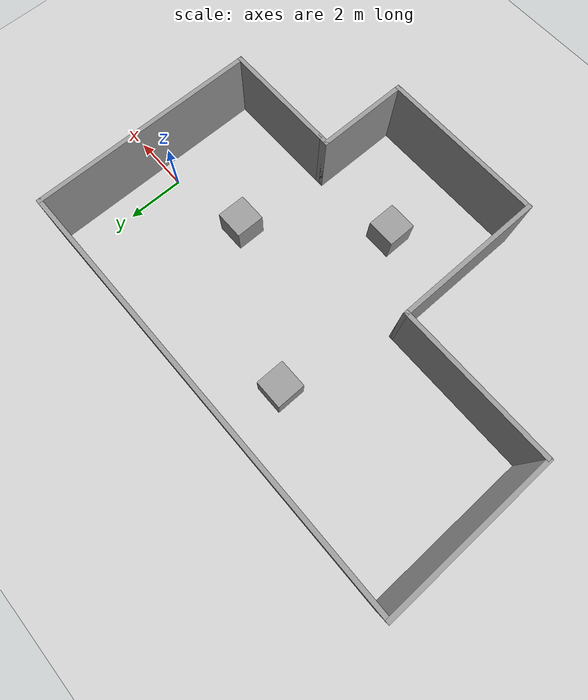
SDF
<sdf version="1.7">
 <world name="default">
  <light name="sun" type="directional">
   <pose>0 0 10 0 -0 0</pose>
   <diffuse>0.8 0.8 0.8 1</diffuse>
   <specular>0.2 0.2 0.2 1</specular>
   <attenuation>
    <range>1000</range>
    <constant>0.9</constant>
    <linear>0.01</linear>
    <quadratic>0.001</quadratic>
   </attenuation>
   <direction>-0.5 0.1 -0.9</direction>
   <spot><inner_angle>0</inner_angle><outer_angle>0</outer_angle><falloff>0</falloff></spot>
  </light>
  <model name="ground_plane">
   <static>1</static>
   <link name="link">
    <collision name="collision">
     <geometry><plane><normal>0 0 1</normal><size>100 100</size></plane></geometry>
     <surface>
      <contact><collide_bitmask>65535</collide_bitmask></contact>
      <friction><ode><mu>100</mu><mu2>50</mu2></ode></friction>
     </surface>
    </collision>
    <visual name="visual">
     <cast_shadows>0</cast_shadows>
     <geometry><plane><normal>0 0 1</normal><size>100 100</size></plane></geometry>
     <material>
      <script><uri>file://media/materials/scripts/gazebo.material</uri><name>Gazebo/Grey</name></script>
     </material>
    </visual>
   </link>
  </model>
  <gravity>0 0 -9.8</gravity>
  <magnetic_field>6e-06 2.3e-05 -4.2e-05</magnetic_field>
  <atmosphere type="adiabatic"/>
  <physics type="ode">
   <max_step_size>0.001</max_step_size>
   <real_time_factor>1</real_time_factor>
   <real_time_update_rate>1000</real_time_update_rate>
  </physics>
  <scene><ambient>0.4 0.4 0.4 1</ambient><background>0.7 0.7 0.7 1</background><shadows>1</shadows></scene>
  <audio><device>default</device></audio>
  <spherical_coordinates>
   <surface_model>EARTH_WGS84</surface_model>
   <latitude_deg>0</latitude_deg>
   <longitude_deg>0</longitude_deg>
   <elevation>0</elevation>
   <heading_deg>0</heading_deg>
  </spherical_coordinates>
  <model name="SmallRoom">
   <pose>-6.6757 -1.38114 0 0 -0 0</pose>
   <link name="Wall_0">
    <collision name="Wall_0_Collision">
     <geometry><box><size>4 0.15 2.5</size></box></geometry>
     <pose>0 0 1.25 0 -0 0</pose>
    </collision>
    <visual name="Wall_0_Visual">
     <pose>0 0 1.25 0 -0 0</pose>
     <geometry><box><size>4 0.15 2.5</size></box></geometry>
     <material>
      <script><uri>file://media/materials/scripts/gazebo.material</uri><name>Gazebo/Grey</name></script>
      <ambient>1 1 1 1</ambient>
     </material>
     <meta><layer>0</layer></meta>
    </visual>
    <pose>5.625 -2.375 0 0 -0 0</pose>
   </link>
   <link name="Wall_1">
    <collision name="Wall_1_Collision">
     <geometry><box><size>8 0.15 2.5</size></box></geometry>
     <pose>0 0 1.25 0 -0 0</pose>
    </collision>
    <visual name="Wall_1_Visual">
     <pose>0 0 1.25 0 -0 0</pose>
     <geometry><box><size>8 0.15 2.5</size></box></geometry>
     <material>
      <script><uri>file://media/materials/scripts/gazebo.material</uri><name>Gazebo/Grey</name></script>
      <ambient>1 1 1 1</ambient>
     </material>
     <meta><layer>0</layer></meta>
    </visual>
    <pose>7.55 1.55 0 0 -0 1.5708</pose>
   </link>
   <link name="Wall_2">
    <collision name="Wall_2_Collision">
     <geometry><box><size>15.25 0.15 2.5</size></box></geometry>
     <pose>0 0 1.25 0 -0 0</pose>
    </collision>
    <visual name="Wall_2_Visual">
     <pose>0 0 1.25 0 -0 0</pose>
     <geometry><box><size>15.25 0.15 2.5</size></box></geometry>
     <material>
      <script><uri>file://media/materials/scripts/gazebo.material</uri><name>Gazebo/Grey</name></script>
      <ambient>1 1 1 1</ambient>
     </material>
     <meta><layer>0</layer></meta>
    </visual>
    <pose>0 5.475 0 0 -0 3.14159</pose>
   </link>
   <link name="Wall_3">
    <collision name="Wall_3_Collision">
     <geometry><box><size>6 0.15 2.5</size></box></geometry>
     <pose>0 0 1.25 0 -0 0</pose>
    </collision>
    <visual name="Wall_3_Visual">
     <pose>0 0 1.25 0 -0 0</pose>
     <geometry><box><size>6 0.15 2.5</size></box></geometry>
     <material>
      <script><uri>file://media/materials/scripts/gazebo.material</uri><name>Gazebo/Grey</name></script>
      <ambient>1 1 1 1</ambient>
     </material>
     <meta><layer>0</layer></meta>
    </visual>
    <pose>-7.55 2.55 0 0 -0 -1.5708</pose>
   </link>
   <link name="Wall_4">
    <collision name="Wall_4_Collision">
     <geometry><box><size>5.5 0.15 2.5</size></box></geometry>
     <pose>0 0 1.25 0 -0 0</pose>
    </collision>
    <visual name="Wall_4_Visual">
     <pose>0 0 1.25 0 -0 0</pose>
     <geometry><box><size>5.5 0.15 2.5</size></box></geometry>
     <material>
      <script><uri>file://media/materials/scripts/gazebo.material</uri><name>Gazebo/Grey</name></script>
      <ambient>1 1 1 1</ambient>
     </material>
     <meta><layer>0</layer></meta>
    </visual>
    <pose>-4.875 -0.375 0 0 -0 0</pose>
   </link>
   <link name="Wall_5">
    <collision name="Wall_5_Collision">
     <geometry><box><size>5.25 0.15 2.5</size></box></geometry>
     <pose>0 0 1.25 0 -0 0</pose>
    </collision>
    <visual name="Wall_5_Visual">
     <pose>0 0 1.25 0 -0 0</pose>
     <geometry><box><size>5.25 0.15 2.5</size></box></geometry>
     <material>
      <script><uri>file://media/materials/scripts/gazebo.material</uri><name>Gazebo/Grey</name></script>
      <ambient>1 1 1 1</ambient>
     </material>
     <meta><layer>0</layer></meta>
    </visual>
    <pose>-2.2 -2.925 0 0 -0 -1.5708</pose>
   </link>
   <link name="Wall_6">
    <collision name="Wall_6_Collision">
     <geometry><box><size>5.75 0.15 2.5</size></box></geometry>
     <pose>0 0 1.25 0 -0 0</pose>
    </collision>
    <visual name="Wall_6_Visual">
     <pose>0 0 1.25 0 -0 0</pose>
     <geometry><box><size>5.75 0.15 2.5</size></box></geometry>
     <material>
      <script><uri>file://media/materials/scripts/gazebo.material</uri><name>Gazebo/Grey</name></script>
      <ambient>1 1 1 1</ambient>
     </material>
     <meta><layer>0</layer></meta>
    </visual>
    <pose>0.6 -5.475 0 0 -0 0</pose>
   </link>
   <link name="Wall_7">
    <collision name="Wall_7_Collision">
     <geometry><box><size>3.25 0.15 2.5</size></box></geometry>
     <pose>0 0 1.25 0 -0 0</pose>
    </collision>
    <visual name="Wall_7_Visual">
     <pose>0 0 1.25 0 -0 0</pose>
     <geometry><box><size>3.25 0.15 2.5</size></box></geometry>
     <material>
      <script><uri>file://media/materials/scripts/gazebo.material</uri><name>Gazebo/Grey</name></script>
      <ambient>1 1 1 1</ambient>
     </material>
     <meta><layer>0</layer></meta>
    </visual>
    <pose>3.4 -3.925 0 0 -0 1.5708</pose>
   </link>
   <link name="Wall_8">
    <collision name="Wall_8_Collision">
     <geometry><box><size>0.45 0.15 2.5</size></box></geometry>
     <pose>0 0 1.25 0 -0 0</pose>
    </collision>
    <visual name="Wall_8_Visual">
     <pose>0 0 1.25 0 -0 0</pose>
     <geometry><box><size>0.45 0.15 2.5</size></box></geometry>
     <material>
      <script><uri>file://media/materials/scripts/gazebo.material</uri><name>Gazebo/Grey</name></script>
      <ambient>1 1 1 1</ambient>
     </material>
     <meta><layer>0</layer></meta>
    </visual>
    <pose>3.55 -2.375 0 0 -0 0</pose>
   </link>
   <static>1</static>
  </model>
  <model name="SmallRoom_0">
   <link name="link_0">
    <inertial>
     <mass>1</mass>
     <inertia>
      <ixx>0.166667</ixx>
      <ixy>0</ixy>
      <ixz>0</ixz>
      <iyy>0.166667</iyy>
      <iyz>0</iyz>
      <izz>0.166667</izz>
     </inertia>
    </inertial>
    <pose>-2.20049 2.91642 0 0 -0 0</pose>
    <visual name="visual">
     <geometry><box><size>1 1 1</size></box></geometry>
     <material>
      <lighting>1</lighting>
      <script><uri>file://media/materials/scripts/gazebo.material</uri><name>Gazebo/Grey</name></script>
      <shader type="pixel"/>
     </material>
    </visual>
    <collision name="collision">
     <geometry><box><size>1 1 1</size></box></geometry>
     <surface>
      <friction>
       <ode><mu>1</mu><mu2>1</mu2><fdir1>0 0 0</fdir1><slip1>0</slip1><slip2>0</slip2></ode>
       <torsional>
        <coefficient>1</coefficient>
        <patch_radius>0</patch_radius>
        <surface_radius>0</surface_radius>
        <use_patch_radius>1</use_patch_radius>
        <ode><slip>0</slip></ode>
       </torsional>
      </friction>
      <bounce><restitution_coefficient>0</restitution_coefficient><threshold>1e+06</threshold></bounce>
      <contact>
       <collide_without_contact>0</collide_without_contact>
       <collide_without_contact_bitmask>1</collide_without_contact_bitmask>
       <collide_bitmask>1</collide_bitmask>
       <ode>
        <soft_cfm>0</soft_cfm>
        <soft_erp>0.2</soft_erp>
        <kp>1e+13</kp>
        <kd>1</kd>
        <max_vel>0.01</max_vel>
        <min_depth>0</min_depth>
       </ode>
       <bullet>
        <split_impulse>1</split_impulse>
        <split_impulse_penetration_threshold>-0.01</split_impulse_penetration_threshold>
        <soft_cfm>0</soft_cfm>
        <soft_erp>0.2</soft_erp>
        <kp>1e+13</kp>
        <kd>1</kd>
       </bullet>
      </contact>
     </surface>
    </collision>
   </link>
   <link name="link_1">
    <inertial>
     <mass>1</mass>
     <inertia>
      <ixx>0.166667</ixx>
      <ixy>0</ixy>
      <ixz>0</ixz>
      <iyy>0.166667</iyy>
      <iyz>0</iyz>
      <izz>0.166667</izz>
     </inertia>
    </inertial>
    <pose>-0.613619 -3.20388 0 0 -0 0</pose>
    <visual name="visual">
     <geometry><box><size>1 1 1</size></box></geometry>
     <material>
      <lighting>1</lighting>
      <script><uri>file://media/materials/scripts/gazebo.material</uri><name>Gazebo/Grey</name></script>
      <shader type="pixel"/>
     </material>
    </visual>
    <collision name="collision">
     <geometry><box><size>1 1 1</size></box></geometry>
     <surface>
      <friction>
       <ode><mu>1</mu><mu2>1</mu2><fdir1>0 0 0</fdir1><slip1>0</slip1><slip2>0</slip2></ode>
       <torsional>
        <coefficient>1</coefficient>
        <patch_radius>0</patch_radius>
        <surface_radius>0</surface_radius>
        <use_patch_radius>1</use_patch_radius>
        <ode><slip>0</slip></ode>
       </torsional>
      </friction>
      <bounce><restitution_coefficient>0</restitution_coefficient><threshold>1e+06</threshold></bounce>
      <contact>
       <collide_without_contact>0</collide_without_contact>
       <collide_without_contact_bitmask>1</collide_without_contact_bitmask>
       <collide_bitmask>1</collide_bitmask>
       <ode>
        <soft_cfm>0</soft_cfm>
        <soft_erp>0.2</soft_erp>
        <kp>1e+13</kp>
        <kd>1</kd>
        <max_vel>0.01</max_vel>
        <min_depth>0</min_depth>
       </ode>
       <bullet>
        <split_impulse>1</split_impulse>
        <split_impulse_penetration_threshold>-0.01</split_impulse_penetration_threshold>
        <soft_cfm>0</soft_cfm>
        <soft_erp>0.2</soft_erp>
        <kp>1e+13</kp>
        <kd>1</kd>
       </bullet>
      </contact>
     </surface>
    </collision>
   </link>
   <link name="link_2">
    <inertial>
     <mass>1</mass>
     <inertia>
      <ixx>0.166667</ixx>
      <ixy>0</ixy>
      <ixz>0</ixz>
      <iyy>0.166667</iyy>
      <iyz>0</iyz>
      <izz>0.166667</izz>
     </inertia>
    </inertial>
    <pose>2.81411 0.287461 0 0 -0 0</pose>
    <visual name="visual">
     <geometry><box><size>1 1 1</size></box></geometry>
     <material>
      <lighting>1</lighting>
      <script><uri>file://media/materials/scripts/gazebo.material</uri><name>Gazebo/Grey</name></script>
      <shader type="pixel"/>
     </material>
    </visual>
    <collision name="collision">
     <geometry><box><size>1 1 1</size></box></geometry>
     <surface>
      <friction>
       <ode><mu>1</mu><mu2>1</mu2><fdir1>0 0 0</fdir1><slip1>0</slip1><slip2>0</slip2></ode>
       <torsional>
        <coefficient>1</coefficient>
        <patch_radius>0</patch_radius>
        <surface_radius>0</surface_radius>
        <use_patch_radius>1</use_patch_radius>
        <ode><slip>0</slip></ode>
       </torsional>
      </friction>
      <bounce><restitution_coefficient>0</restitution_coefficient><threshold>1e+06</threshold></bounce>
      <contact>
       <collide_without_contact>0</collide_without_contact>
       <collide_without_contact_bitmask>1</collide_without_contact_bitmask>
       <collide_bitmask>1</collide_bitmask>
       <ode>
        <soft_cfm>0</soft_cfm>
        <soft_erp>0.2</soft_erp>
        <kp>1e+13</kp>
        <kd>1</kd>
        <max_vel>0.01</max_vel>
        <min_depth>0</min_depth>
       </ode>
       <bullet>
        <split_impulse>1</split_impulse>
        <split_impulse_penetration_threshold>-0.01</split_impulse_penetration_threshold>
        <soft_cfm>0</soft_cfm>
        <soft_erp>0.2</soft_erp>
        <kp>1e+13</kp>
        <kd>1</kd>
       </bullet>
      </contact>
     </surface>
    </collision>
   </link>
   <static>0</static>
   <pose>-5.64091 -0.832515 0.5 0 -0 0</pose>
  </model>
 </world>
</sdf>
